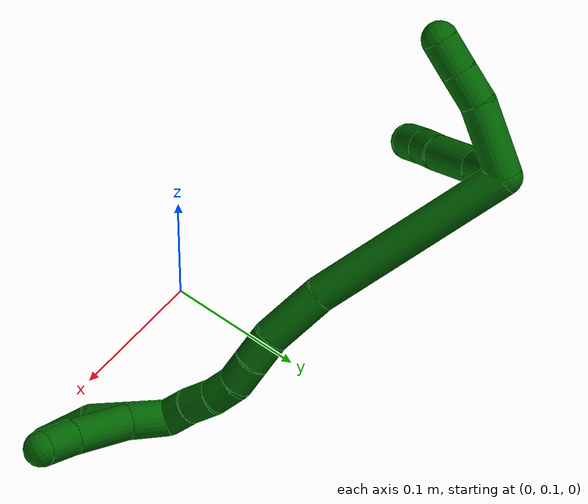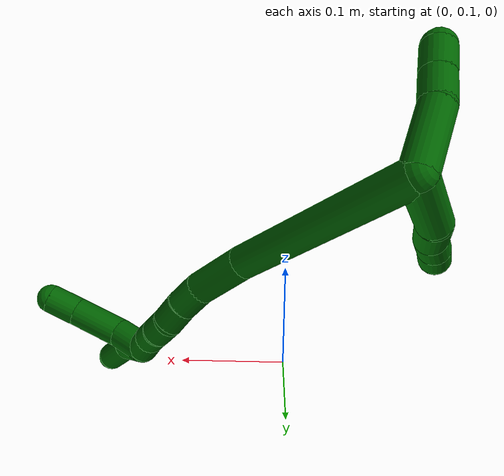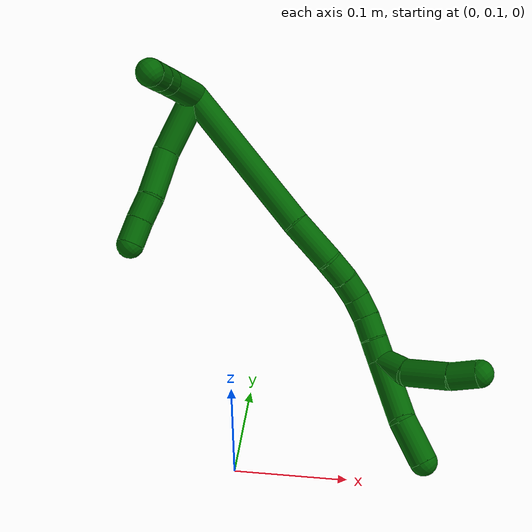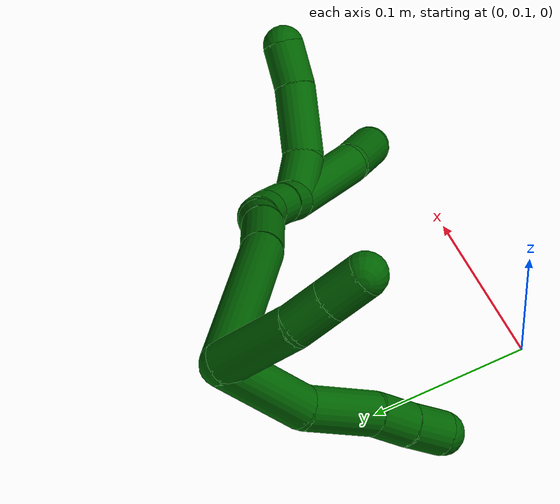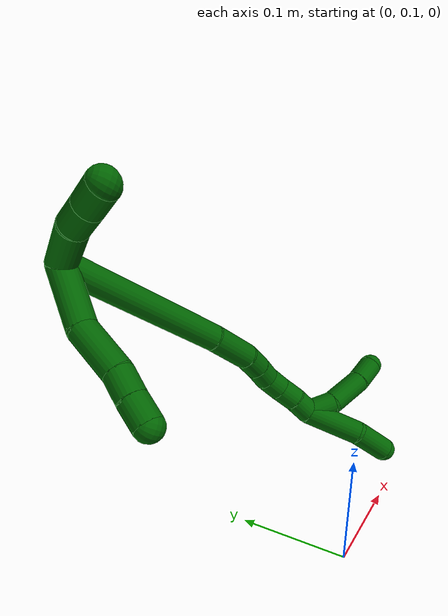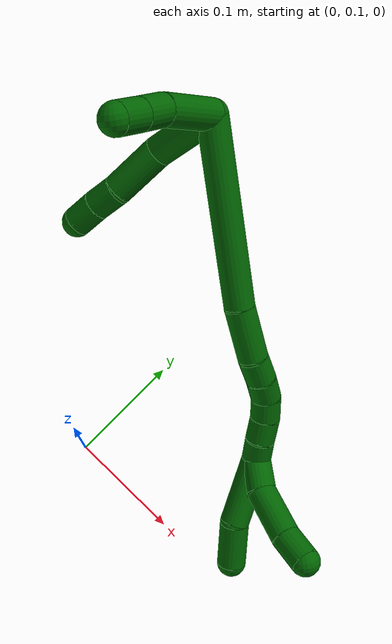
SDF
<sdf version="1.7">
 <world name="default">
  <model name="6">
   <static>0</static>
   <link name="6">
    <collision name="collision-cylinder-e_1_2_8">
     <pose>-0.025165 -0.00774 -0.011774 2.56003 -1.06036 -2.19748</pose>
     <geometry><cylinder><radius>0.0125</radius><length>0.057682</length></cylinder></geometry>
     <surface>
      <friction><ode><mu>1.16</mu><mu2>1.16</mu2><slip1>0</slip1><slip2>0</slip2></ode></friction>
      <contact><ode><kp>1e+06</kp><kd>1</kd><max_vel>0</max_vel><min_depth>0.001</min_depth></ode></contact>
     </surface>
    </collision>
    <visual name="visual-cylinder-e_1_2_8">
     <pose>-0.025165 -0.00774 -0.011774 2.56003 -1.06036 -2.19748</pose>
     <geometry><cylinder><radius>0.0125</radius><length>0.057682</length></cylinder></geometry>
     <material><ambient>0 0.392157 0.003922 1</ambient></material>
    </visual>
    <collision name="collision-cylinder-e_2_8_9">
     <pose>-0.065483 -0.026711 -0.036161 2.41412 -0.731344 -1.5766</pose>
     <geometry><cylinder><radius>0.0125</radius><length>0.045381</length></cylinder></geometry>
     <surface>
      <friction><ode><mu>1.16</mu><mu2>1.16</mu2><slip1>0</slip1><slip2>0</slip2></ode></friction>
      <contact><ode><kp>1e+06</kp><kd>1</kd><max_vel>0</max_vel><min_depth>0.001</min_depth></ode></contact>
     </surface>
    </collision>
    <visual name="visual-cylinder-e_2_8_9">
     <pose>-0.065483 -0.026711 -0.036161 2.41412 -0.731344 -1.5766</pose>
     <geometry><cylinder><radius>0.0125</radius><length>0.045381</length></cylinder></geometry>
     <material><ambient>0 0.392157 0.003922 1</ambient></material>
    </visual>
    <collision name="collision-cylinder-e_3_9_10">
     <pose>-0.089941 -0.04259 -0.054133 2.42697 -0.919313 -1.84924</pose>
     <geometry><cylinder><radius>0.0125</radius><length>0.023398</length></cylinder></geometry>
     <surface>
      <friction><ode><mu>1.16</mu><mu2>1.16</mu2><slip1>0</slip1><slip2>0</slip2></ode></friction>
      <contact><ode><kp>1e+06</kp><kd>1</kd><max_vel>0</max_vel><min_depth>0.001</min_depth></ode></contact>
     </surface>
    </collision>
    <visual name="visual-cylinder-e_3_9_10">
     <pose>-0.089941 -0.04259 -0.054133 2.42697 -0.919313 -1.84924</pose>
     <geometry><cylinder><radius>0.0125</radius><length>0.023398</length></cylinder></geometry>
     <material><ambient>0 0.392157 0.003922 1</ambient></material>
    </visual>
    <collision name="collision-cylinder-e_4_10_6">
     <pose>-0.108158 -0.051996 -0.065527 2.47416 -0.859322 -1.84617</pose>
     <geometry><cylinder><radius>0.0125</radius><length>0.023539</length></cylinder></geometry>
     <surface>
      <friction><ode><mu>1.16</mu><mu2>1.16</mu2><slip1>0</slip1><slip2>0</slip2></ode></friction>
      <contact><ode><kp>1e+06</kp><kd>1</kd><max_vel>0</max_vel><min_depth>0.001</min_depth></ode></contact>
     </surface>
    </collision>
    <visual name="visual-cylinder-e_4_10_6">
     <pose>-0.108158 -0.051996 -0.065527 2.47416 -0.859322 -1.84617</pose>
     <geometry><cylinder><radius>0.0125</radius><length>0.023539</length></cylinder></geometry>
     <material><ambient>0 0.392157 0.003922 1</ambient></material>
    </visual>
    <collision name="collision-cylinder-e_1_2_11">
     <pose>0.002688 -0.024749 0.006154 1.32708 0.105014 0.082128</pose>
     <geometry><cylinder><radius>0.0125</radius><length>0.051289</length></cylinder></geometry>
     <surface>
      <friction><ode><mu>1.16</mu><mu2>1.16</mu2><slip1>0</slip1><slip2>0</slip2></ode></friction>
      <contact><ode><kp>1e+06</kp><kd>1</kd><max_vel>0</max_vel><min_depth>0.001</min_depth></ode></contact>
     </surface>
    </collision>
    <visual name="visual-cylinder-e_1_2_11">
     <pose>0.002688 -0.024749 0.006154 1.32708 0.105014 0.082128</pose>
     <geometry><cylinder><radius>0.0125</radius><length>0.051289</length></cylinder></geometry>
     <material><ambient>0 0.392157 0.003922 1</ambient></material>
    </visual>
    <collision name="collision-cylinder-e_2_11_12">
     <pose>0.007468 -0.06159 0.012811 1.5293 0.171135 0.16421</pose>
     <geometry><cylinder><radius>0.0125</radius><length>0.024562</length></cylinder></geometry>
     <surface>
      <friction><ode><mu>1.16</mu><mu2>1.16</mu2><slip1>0</slip1><slip2>0</slip2></ode></friction>
      <contact><ode><kp>1e+06</kp><kd>1</kd><max_vel>0</max_vel><min_depth>0.001</min_depth></ode></contact>
     </surface>
    </collision>
    <visual name="visual-cylinder-e_2_11_12">
     <pose>0.007468 -0.06159 0.012811 1.5293 0.171135 0.16421</pose>
     <geometry><cylinder><radius>0.0125</radius><length>0.024562</length></cylinder></geometry>
     <material><ambient>0 0.392157 0.003922 1</ambient></material>
    </visual>
    <collision name="collision-cylinder-e_3_12_5">
     <pose>0.011648 -0.085555 0.013975 1.51508 0.173869 0.164485</pose>
     <geometry><cylinder><radius>0.0125</radius><length>0.024149</length></cylinder></geometry>
     <surface>
      <friction><ode><mu>1.16</mu><mu2>1.16</mu2><slip1>0</slip1><slip2>0</slip2></ode></friction>
      <contact><ode><kp>1e+06</kp><kd>1</kd><max_vel>0</max_vel><min_depth>0.001</min_depth></ode></contact>
     </surface>
    </collision>
    <visual name="visual-cylinder-e_3_12_5">
     <pose>0.011648 -0.085555 0.013975 1.51508 0.173869 0.164485</pose>
     <geometry><cylinder><radius>0.0125</radius><length>0.024149</length></cylinder></geometry>
     <material><ambient>0 0.392157 0.003922 1</ambient></material>
    </visual>
    <collision name="collision-cylinder-e_1_2_13">
     <pose>-0.00177 0.000803 -0.074628 -3.13083 -0.02371 2.28956</pose>
     <geometry><cylinder><radius>0.0125</radius><length>0.149306</length></cylinder></geometry>
     <surface>
      <friction><ode><mu>1.16</mu><mu2>1.16</mu2><slip1>0</slip1><slip2>0</slip2></ode></friction>
      <contact><ode><kp>1e+06</kp><kd>1</kd><max_vel>0</max_vel><min_depth>0.001</min_depth></ode></contact>
     </surface>
    </collision>
    <visual name="visual-cylinder-e_1_2_13">
     <pose>-0.00177 0.000803 -0.074628 -3.13083 -0.02371 2.28956</pose>
     <geometry><cylinder><radius>0.0125</radius><length>0.149306</length></cylinder></geometry>
     <material><ambient>0 0.392157 0.003922 1</ambient></material>
    </visual>
    <collision name="collision-cylinder-e_2_13_14">
     <pose>-0.003907 0.004983 -0.171457 -2.99063 -0.01633 0.215104</pose>
     <geometry><cylinder><radius>0.0125</radius><length>0.044919</length></cylinder></geometry>
     <surface>
      <friction><ode><mu>1.16</mu><mu2>1.16</mu2><slip1>0</slip1><slip2>0</slip2></ode></friction>
      <contact><ode><kp>1e+06</kp><kd>1</kd><max_vel>0</max_vel><min_depth>0.001</min_depth></ode></contact>
     </surface>
    </collision>
    <visual name="visual-cylinder-e_2_13_14">
     <pose>-0.003907 0.004983 -0.171457 -2.99063 -0.01633 0.215104</pose>
     <geometry><cylinder><radius>0.0125</radius><length>0.044919</length></cylinder></geometry>
     <material><ambient>0 0.392157 0.003922 1</ambient></material>
    </visual>
    <collision name="collision-cylinder-e_3_14_15">
     <pose>-0.005441 0.012009 -0.204215 -2.80888 -0.104156 0.602004</pose>
     <geometry><cylinder><radius>0.0125</radius><length>0.02246</length></cylinder></geometry>
     <surface>
      <friction><ode><mu>1.16</mu><mu2>1.16</mu2><slip1>0</slip1><slip2>0</slip2></ode></friction>
      <contact><ode><kp>1e+06</kp><kd>1</kd><max_vel>0</max_vel><min_depth>0.001</min_depth></ode></contact>
     </surface>
    </collision>
    <visual name="visual-cylinder-e_3_14_15">
     <pose>-0.005441 0.012009 -0.204215 -2.80888 -0.104156 0.602004</pose>
     <geometry><cylinder><radius>0.0125</radius><length>0.02246</length></cylinder></geometry>
     <material><ambient>0 0.392157 0.003922 1</ambient></material>
    </visual>
    <collision name="collision-cylinder-e_4_15_16">
     <pose>-0.008717 0.018852 -0.224229 -2.81576 -0.208166 1.13226</pose>
     <geometry><cylinder><radius>0.0125</radius><length>0.020406</length></cylinder></geometry>
     <surface>
      <friction><ode><mu>1.16</mu><mu2>1.16</mu2><slip1>0</slip1><slip2>0</slip2></ode></friction>
      <contact><ode><kp>1e+06</kp><kd>1</kd><max_vel>0</max_vel><min_depth>0.001</min_depth></ode></contact>
     </surface>
    </collision>
    <visual name="visual-cylinder-e_4_15_16">
     <pose>-0.008717 0.018852 -0.224229 -2.81576 -0.208166 1.13226</pose>
     <geometry><cylinder><radius>0.0125</radius><length>0.020406</length></cylinder></geometry>
     <material><ambient>0 0.392157 0.003922 1</ambient></material>
    </visual>
    <collision name="collision-cylinder-e_5_16_17">
     <pose>-0.013305 0.022191 -0.243433 -3.12686 -0.24906 3.02407</pose>
     <geometry><cylinder><radius>0.0125</radius><length>0.020117</length></cylinder></geometry>
     <surface>
      <friction><ode><mu>1.16</mu><mu2>1.16</mu2><slip1>0</slip1><slip2>0</slip2></ode></friction>
      <contact><ode><kp>1e+06</kp><kd>1</kd><max_vel>0</max_vel><min_depth>0.001</min_depth></ode></contact>
     </surface>
    </collision>
    <visual name="visual-cylinder-e_5_16_17">
     <pose>-0.013305 0.022191 -0.243433 -3.12686 -0.24906 3.02407</pose>
     <geometry><cylinder><radius>0.0125</radius><length>0.020117</length></cylinder></geometry>
     <material><ambient>0 0.392157 0.003922 1</ambient></material>
    </visual>
    <collision name="collision-cylinder-e_6_17_18">
     <pose>-0.019034 0.020617 -0.263162 2.97113 -0.310456 -2.1421</pose>
     <geometry><cylinder><radius>0.0125</radius><length>0.021273</length></cylinder></geometry>
     <surface>
      <friction><ode><mu>1.16</mu><mu2>1.16</mu2><slip1>0</slip1><slip2>0</slip2></ode></friction>
      <contact><ode><kp>1e+06</kp><kd>1</kd><max_vel>0</max_vel><min_depth>0.001</min_depth></ode></contact>
     </surface>
    </collision>
    <visual name="visual-cylinder-e_6_17_18">
     <pose>-0.019034 0.020617 -0.263162 2.97113 -0.310456 -2.1421</pose>
     <geometry><cylinder><radius>0.0125</radius><length>0.021273</length></cylinder></geometry>
     <material><ambient>0 0.392157 0.003922 1</ambient></material>
    </visual>
    <collision name="collision-cylinder-e_7_18_1">
     <pose>-0.026142 0.018427 -0.283175 3.09462 -0.366872 -2.88971</pose>
     <geometry><cylinder><radius>0.0125</radius><length>0.021518</length></cylinder></geometry>
     <surface>
      <friction><ode><mu>1.16</mu><mu2>1.16</mu2><slip1>0</slip1><slip2>0</slip2></ode></friction>
      <contact><ode><kp>1e+06</kp><kd>1</kd><max_vel>0</max_vel><min_depth>0.001</min_depth></ode></contact>
     </surface>
    </collision>
    <visual name="visual-cylinder-e_7_18_1">
     <pose>-0.026142 0.018427 -0.283175 3.09462 -0.366872 -2.88971</pose>
     <geometry><cylinder><radius>0.0125</radius><length>0.021518</length></cylinder></geometry>
     <material><ambient>0 0.392157 0.003922 1</ambient></material>
    </visual>
    <collision name="collision-cylinder-e_1_1_19">
     <pose>-0.022612 0.01188 -0.304049 2.63078 0.53647 1.6221</pose>
     <geometry><cylinder><radius>0.0125</radius><length>0.028918</length></cylinder></geometry>
     <surface>
      <friction><ode><mu>1.16</mu><mu2>1.16</mu2><slip1>0</slip1><slip2>0</slip2></ode></friction>
      <contact><ode><kp>1e+06</kp><kd>1</kd><max_vel>0</max_vel><min_depth>0.001</min_depth></ode></contact>
     </surface>
    </collision>
    <visual name="visual-cylinder-e_1_1_19">
     <pose>-0.022612 0.01188 -0.304049 2.63078 0.53647 1.6221</pose>
     <geometry><cylinder><radius>0.0125</radius><length>0.028918</length></cylinder></geometry>
     <material><ambient>0 0.392157 0.003922 1</ambient></material>
    </visual>
    <collision name="collision-cylinder-e_2_19_20">
     <pose>0.001177 0.000804 -0.328778 2.79606 0.837899 2.39463</pose>
     <geometry><cylinder><radius>0.0125</radius><length>0.044127</length></cylinder></geometry>
     <surface>
      <friction><ode><mu>1.16</mu><mu2>1.16</mu2><slip1>0</slip1><slip2>0</slip2></ode></friction>
      <contact><ode><kp>1e+06</kp><kd>1</kd><max_vel>0</max_vel><min_depth>0.001</min_depth></ode></contact>
     </surface>
    </collision>
    <visual name="visual-cylinder-e_2_19_20">
     <pose>0.001177 0.000804 -0.328778 2.79606 0.837899 2.39463</pose>
     <geometry><cylinder><radius>0.0125</radius><length>0.044127</length></cylinder></geometry>
     <material><ambient>0 0.392157 0.003922 1</ambient></material>
    </visual>
    <collision name="collision-cylinder-e_3_20_4">
     <pose>0.028996 -0.005998 -0.349592 2.88685 1.01107 2.68686</pose>
     <geometry><cylinder><radius>0.0125</radius><length>0.026955</length></cylinder></geometry>
     <surface>
      <friction><ode><mu>1.16</mu><mu2>1.16</mu2><slip1>0</slip1><slip2>0</slip2></ode></friction>
      <contact><ode><kp>1e+06</kp><kd>1</kd><max_vel>0</max_vel><min_depth>0.001</min_depth></ode></contact>
     </surface>
    </collision>
    <visual name="visual-cylinder-e_3_20_4">
     <pose>0.028996 -0.005998 -0.349592 2.88685 1.01107 2.68686</pose>
     <geometry><cylinder><radius>0.0125</radius><length>0.026955</length></cylinder></geometry>
     <material><ambient>0 0.392157 0.003922 1</ambient></material>
    </visual>
    <collision name="collision-cylinder-e_1_1_21">
     <pose>-0.035917 0.005521 -0.319264 2.69635 -0.202096 -0.842223</pose>
     <geometry><cylinder><radius>0.0125</radius><length>0.058944</length></cylinder></geometry>
     <surface>
      <friction><ode><mu>1.16</mu><mu2>1.16</mu2><slip1>0</slip1><slip2>0</slip2></ode></friction>
      <contact><ode><kp>1e+06</kp><kd>1</kd><max_vel>0</max_vel><min_depth>0.001</min_depth></ode></contact>
     </surface>
    </collision>
    <visual name="visual-cylinder-e_1_1_21">
     <pose>-0.035917 0.005521 -0.319264 2.69635 -0.202096 -0.842223</pose>
     <geometry><cylinder><radius>0.0125</radius><length>0.058944</length></cylinder></geometry>
     <material><ambient>0 0.392157 0.003922 1</ambient></material>
    </visual>
    <collision name="collision-cylinder-e_2_21_3">
     <pose>-0.046043 -0.008822 -0.365323 3.04645 -0.206544 -2.2804</pose>
     <geometry><cylinder><radius>0.0125</radius><length>0.041056</length></cylinder></geometry>
     <surface>
      <friction><ode><mu>1.16</mu><mu2>1.16</mu2><slip1>0</slip1><slip2>0</slip2></ode></friction>
      <contact><ode><kp>1e+06</kp><kd>1</kd><max_vel>0</max_vel><min_depth>0.001</min_depth></ode></contact>
     </surface>
    </collision>
    <visual name="visual-cylinder-e_2_21_3">
     <pose>-0.046043 -0.008822 -0.365323 3.04645 -0.206544 -2.2804</pose>
     <geometry><cylinder><radius>0.0125</radius><length>0.041056</length></cylinder></geometry>
     <material><ambient>0 0.392157 0.003922 1</ambient></material>
    </visual>
    <collision name="collision-sphere-3">
     <pose>-0.050253 -0.010731 -0.385324 0 -0 0</pose>
     <geometry><sphere><radius>0.0125</radius></sphere></geometry>
     <surface>
      <friction><ode><mu>1.16</mu><mu2>1.16</mu2><slip1>0</slip1><slip2>0</slip2></ode></friction>
      <contact><ode><kp>1e+06</kp><kd>1</kd><max_vel>0</max_vel><min_depth>0.001</min_depth></ode></contact>
     </surface>
    </collision>
    <visual name="visual-sphere-3">
     <pose>-0.050253 -0.010731 -0.385324 0 -0 0</pose>
     <geometry><sphere><radius>0.0125</radius></sphere></geometry>
     <material><ambient>0 0.392157 0.003922 1</ambient></material>
    </visual>
    <collision name="collision-sphere-21">
     <pose>-0.041833 -0.006913 -0.345322 0 -0 0</pose>
     <geometry><sphere><radius>0.0125</radius></sphere></geometry>
     <surface>
      <friction><ode><mu>1.16</mu><mu2>1.16</mu2><slip1>0</slip1><slip2>0</slip2></ode></friction>
      <contact><ode><kp>1e+06</kp><kd>1</kd><max_vel>0</max_vel><min_depth>0.001</min_depth></ode></contact>
     </surface>
    </collision>
    <visual name="visual-sphere-21">
     <pose>-0.041833 -0.006913 -0.345322 0 -0 0</pose>
     <geometry><sphere><radius>0.0125</radius></sphere></geometry>
     <material><ambient>0 0.392157 0.003922 1</ambient></material>
    </visual>
    <collision name="collision-sphere-4">
     <pose>0.040417 -0.007802 -0.356517 0 -0 0</pose>
     <geometry><sphere><radius>0.0125</radius></sphere></geometry>
     <surface>
      <friction><ode><mu>1.16</mu><mu2>1.16</mu2><slip1>0</slip1><slip2>0</slip2></ode></friction>
      <contact><ode><kp>1e+06</kp><kd>1</kd><max_vel>0</max_vel><min_depth>0.001</min_depth></ode></contact>
     </surface>
    </collision>
    <visual name="visual-sphere-4">
     <pose>0.040417 -0.007802 -0.356517 0 -0 0</pose>
     <geometry><sphere><radius>0.0125</radius></sphere></geometry>
     <material><ambient>0 0.392157 0.003922 1</ambient></material>
    </visual>
    <collision name="collision-sphere-20">
     <pose>0.017575 -0.004195 -0.342667 0 -0 0</pose>
     <geometry><sphere><radius>0.0125</radius></sphere></geometry>
     <surface>
      <friction><ode><mu>1.16</mu><mu2>1.16</mu2><slip1>0</slip1><slip2>0</slip2></ode></friction>
      <contact><ode><kp>1e+06</kp><kd>1</kd><max_vel>0</max_vel><min_depth>0.001</min_depth></ode></contact>
     </surface>
    </collision>
    <visual name="visual-sphere-20">
     <pose>0.017575 -0.004195 -0.342667 0 -0 0</pose>
     <geometry><sphere><radius>0.0125</radius></sphere></geometry>
     <material><ambient>0 0.392157 0.003922 1</ambient></material>
    </visual>
    <collision name="collision-sphere-11">
     <pose>0.005376 -0.049499 0.012309 0 -0 0</pose>
     <geometry><sphere><radius>0.0125</radius></sphere></geometry>
     <surface>
      <friction><ode><mu>1.16</mu><mu2>1.16</mu2><slip1>0</slip1><slip2>0</slip2></ode></friction>
      <contact><ode><kp>1e+06</kp><kd>1</kd><max_vel>0</max_vel><min_depth>0.001</min_depth></ode></contact>
     </surface>
    </collision>
    <visual name="visual-sphere-11">
     <pose>0.005376 -0.049499 0.012309 0 -0 0</pose>
     <geometry><sphere><radius>0.0125</radius></sphere></geometry>
     <material><ambient>0 0.392157 0.003922 1</ambient></material>
    </visual>
    <collision name="collision-sphere-6">
     <pose>-0.117072 -0.056753 -0.071562 0 -0 0</pose>
     <geometry><sphere><radius>0.0125</radius></sphere></geometry>
     <surface>
      <friction><ode><mu>1.16</mu><mu2>1.16</mu2><slip1>0</slip1><slip2>0</slip2></ode></friction>
      <contact><ode><kp>1e+06</kp><kd>1</kd><max_vel>0</max_vel><min_depth>0.001</min_depth></ode></contact>
     </surface>
    </collision>
    <visual name="visual-sphere-6">
     <pose>-0.117072 -0.056753 -0.071562 0 -0 0</pose>
     <geometry><sphere><radius>0.0125</radius></sphere></geometry>
     <material><ambient>0 0.392157 0.003922 1</ambient></material>
    </visual>
    <collision name="collision-sphere-10">
     <pose>-0.099244 -0.047239 -0.059491 0 -0 0</pose>
     <geometry><sphere><radius>0.0125</radius></sphere></geometry>
     <surface>
      <friction><ode><mu>1.16</mu><mu2>1.16</mu2><slip1>0</slip1><slip2>0</slip2></ode></friction>
      <contact><ode><kp>1e+06</kp><kd>1</kd><max_vel>0</max_vel><min_depth>0.001</min_depth></ode></contact>
     </surface>
    </collision>
    <visual name="visual-sphere-10">
     <pose>-0.099244 -0.047239 -0.059491 0 -0 0</pose>
     <geometry><sphere><radius>0.0125</radius></sphere></geometry>
     <material><ambient>0 0.392157 0.003922 1</ambient></material>
    </visual>
    <collision name="collision-sphere-9">
     <pose>-0.080638 -0.037941 -0.048774 0 -0 0</pose>
     <geometry><sphere><radius>0.0125</radius></sphere></geometry>
     <surface>
      <friction><ode><mu>1.16</mu><mu2>1.16</mu2><slip1>0</slip1><slip2>0</slip2></ode></friction>
      <contact><ode><kp>1e+06</kp><kd>1</kd><max_vel>0</max_vel><min_depth>0.001</min_depth></ode></contact>
     </surface>
    </collision>
    <visual name="visual-sphere-9">
     <pose>-0.080638 -0.037941 -0.048774 0 -0 0</pose>
     <geometry><sphere><radius>0.0125</radius></sphere></geometry>
     <material><ambient>0 0.392157 0.003922 1</ambient></material>
    </visual>
    <collision name="collision-sphere-2">
     <geometry><sphere><radius>0.0125</radius></sphere></geometry>
     <surface>
      <friction><ode><mu>1.16</mu><mu2>1.16</mu2><slip1>0</slip1><slip2>0</slip2></ode></friction>
      <contact><ode><kp>1e+06</kp><kd>1</kd><max_vel>0</max_vel><min_depth>0.001</min_depth></ode></contact>
     </surface>
    </collision>
    <visual name="visual-sphere-2">
     <geometry><sphere><radius>0.0125</radius></sphere></geometry>
     <material><ambient>0 0.392157 0.003922 1</ambient></material>
    </visual>
    <collision name="collision-sphere-19">
     <pose>-0.015222 0.005804 -0.31489 0 -0 0</pose>
     <geometry><sphere><radius>0.0125</radius></sphere></geometry>
     <surface>
      <friction><ode><mu>1.16</mu><mu2>1.16</mu2><slip1>0</slip1><slip2>0</slip2></ode></friction>
      <contact><ode><kp>1e+06</kp><kd>1</kd><max_vel>0</max_vel><min_depth>0.001</min_depth></ode></contact>
     </surface>
    </collision>
    <visual name="visual-sphere-19">
     <pose>-0.015222 0.005804 -0.31489 0 -0 0</pose>
     <geometry><sphere><radius>0.0125</radius></sphere></geometry>
     <material><ambient>0 0.392157 0.003922 1</ambient></material>
    </visual>
    <collision name="collision-sphere-8">
     <pose>-0.050329 -0.015481 -0.023548 0 -0 0</pose>
     <geometry><sphere><radius>0.0125</radius></sphere></geometry>
     <surface>
      <friction><ode><mu>1.16</mu><mu2>1.16</mu2><slip1>0</slip1><slip2>0</slip2></ode></friction>
      <contact><ode><kp>1e+06</kp><kd>1</kd><max_vel>0</max_vel><min_depth>0.001</min_depth></ode></contact>
     </surface>
    </collision>
    <visual name="visual-sphere-8">
     <pose>-0.050329 -0.015481 -0.023548 0 -0 0</pose>
     <geometry><sphere><radius>0.0125</radius></sphere></geometry>
     <material><ambient>0 0.392157 0.003922 1</ambient></material>
    </visual>
    <collision name="collision-sphere-12">
     <pose>0.009559 -0.073681 0.013313 0 -0 0</pose>
     <geometry><sphere><radius>0.0125</radius></sphere></geometry>
     <surface>
      <friction><ode><mu>1.16</mu><mu2>1.16</mu2><slip1>0</slip1><slip2>0</slip2></ode></friction>
      <contact><ode><kp>1e+06</kp><kd>1</kd><max_vel>0</max_vel><min_depth>0.001</min_depth></ode></contact>
     </surface>
    </collision>
    <visual name="visual-sphere-12">
     <pose>0.009559 -0.073681 0.013313 0 -0 0</pose>
     <geometry><sphere><radius>0.0125</radius></sphere></geometry>
     <material><ambient>0 0.392157 0.003922 1</ambient></material>
    </visual>
    <collision name="collision-sphere-5">
     <pose>0.013737 -0.097429 0.014637 0 -0 0</pose>
     <geometry><sphere><radius>0.0125</radius></sphere></geometry>
     <surface>
      <friction><ode><mu>1.16</mu><mu2>1.16</mu2><slip1>0</slip1><slip2>0</slip2></ode></friction>
      <contact><ode><kp>1e+06</kp><kd>1</kd><max_vel>0</max_vel><min_depth>0.001</min_depth></ode></contact>
     </surface>
    </collision>
    <visual name="visual-sphere-5">
     <pose>0.013737 -0.097429 0.014637 0 -0 0</pose>
     <geometry><sphere><radius>0.0125</radius></sphere></geometry>
     <material><ambient>0 0.392157 0.003922 1</ambient></material>
    </visual>
    <collision name="collision-sphere-13">
     <pose>-0.00354 0.001606 -0.149255 0 -0 0</pose>
     <geometry><sphere><radius>0.0125</radius></sphere></geometry>
     <surface>
      <friction><ode><mu>1.16</mu><mu2>1.16</mu2><slip1>0</slip1><slip2>0</slip2></ode></friction>
      <contact><ode><kp>1e+06</kp><kd>1</kd><max_vel>0</max_vel><min_depth>0.001</min_depth></ode></contact>
     </surface>
    </collision>
    <visual name="visual-sphere-13">
     <pose>-0.00354 0.001606 -0.149255 0 -0 0</pose>
     <geometry><sphere><radius>0.0125</radius></sphere></geometry>
     <material><ambient>0 0.392157 0.003922 1</ambient></material>
    </visual>
    <collision name="collision-sphere-14">
     <pose>-0.004273 0.008361 -0.193658 0 -0 0</pose>
     <geometry><sphere><radius>0.0125</radius></sphere></geometry>
     <surface>
      <friction><ode><mu>1.16</mu><mu2>1.16</mu2><slip1>0</slip1><slip2>0</slip2></ode></friction>
      <contact><ode><kp>1e+06</kp><kd>1</kd><max_vel>0</max_vel><min_depth>0.001</min_depth></ode></contact>
     </surface>
    </collision>
    <visual name="visual-sphere-14">
     <pose>-0.004273 0.008361 -0.193658 0 -0 0</pose>
     <geometry><sphere><radius>0.0125</radius></sphere></geometry>
     <material><ambient>0 0.392157 0.003922 1</ambient></material>
    </visual>
    <collision name="collision-sphere-15">
     <pose>-0.006608 0.015657 -0.214771 0 -0 0</pose>
     <geometry><sphere><radius>0.0125</radius></sphere></geometry>
     <surface>
      <friction><ode><mu>1.16</mu><mu2>1.16</mu2><slip1>0</slip1><slip2>0</slip2></ode></friction>
      <contact><ode><kp>1e+06</kp><kd>1</kd><max_vel>0</max_vel><min_depth>0.001</min_depth></ode></contact>
     </surface>
    </collision>
    <visual name="visual-sphere-15">
     <pose>-0.006608 0.015657 -0.214771 0 -0 0</pose>
     <geometry><sphere><radius>0.0125</radius></sphere></geometry>
     <material><ambient>0 0.392157 0.003922 1</ambient></material>
    </visual>
    <collision name="collision-sphere-16">
     <pose>-0.010826 0.022048 -0.233686 0 -0 0</pose>
     <geometry><sphere><radius>0.0125</radius></sphere></geometry>
     <surface>
      <friction><ode><mu>1.16</mu><mu2>1.16</mu2><slip1>0</slip1><slip2>0</slip2></ode></friction>
      <contact><ode><kp>1e+06</kp><kd>1</kd><max_vel>0</max_vel><min_depth>0.001</min_depth></ode></contact>
     </surface>
    </collision>
    <visual name="visual-sphere-16">
     <pose>-0.010826 0.022048 -0.233686 0 -0 0</pose>
     <geometry><sphere><radius>0.0125</radius></sphere></geometry>
     <material><ambient>0 0.392157 0.003922 1</ambient></material>
    </visual>
    <collision name="collision-sphere-17">
     <pose>-0.015784 0.022335 -0.25318 0 -0 0</pose>
     <geometry><sphere><radius>0.0125</radius></sphere></geometry>
     <surface>
      <friction><ode><mu>1.16</mu><mu2>1.16</mu2><slip1>0</slip1><slip2>0</slip2></ode></friction>
      <contact><ode><kp>1e+06</kp><kd>1</kd><max_vel>0</max_vel><min_depth>0.001</min_depth></ode></contact>
     </surface>
    </collision>
    <visual name="visual-sphere-17">
     <pose>-0.015784 0.022335 -0.25318 0 -0 0</pose>
     <geometry><sphere><radius>0.0125</radius></sphere></geometry>
     <material><ambient>0 0.392157 0.003922 1</ambient></material>
    </visual>
    <collision name="collision-sphere-18">
     <pose>-0.022283 0.018899 -0.273143 0 -0 0</pose>
     <geometry><sphere><radius>0.0125</radius></sphere></geometry>
     <surface>
      <friction><ode><mu>1.16</mu><mu2>1.16</mu2><slip1>0</slip1><slip2>0</slip2></ode></friction>
      <contact><ode><kp>1e+06</kp><kd>1</kd><max_vel>0</max_vel><min_depth>0.001</min_depth></ode></contact>
     </surface>
    </collision>
    <visual name="visual-sphere-18">
     <pose>-0.022283 0.018899 -0.273143 0 -0 0</pose>
     <geometry><sphere><radius>0.0125</radius></sphere></geometry>
     <material><ambient>0 0.392157 0.003922 1</ambient></material>
    </visual>
    <collision name="collision-sphere-1">
     <pose>-0.030002 0.017955 -0.293207 0 -0 0</pose>
     <geometry><sphere><radius>0.0125</radius></sphere></geometry>
     <surface>
      <friction><ode><mu>1.16</mu><mu2>1.16</mu2><slip1>0</slip1><slip2>0</slip2></ode></friction>
      <contact><ode><kp>1e+06</kp><kd>1</kd><max_vel>0</max_vel><min_depth>0.001</min_depth></ode></contact>
     </surface>
    </collision>
    <visual name="visual-sphere-1">
     <pose>-0.030002 0.017955 -0.293207 0 -0 0</pose>
     <geometry><sphere><radius>0.0125</radius></sphere></geometry>
     <material><ambient>0 0.392157 0.003922 1</ambient></material>
    </visual>
    <inertial>
     <pose>-0.019032 -0.008356 -0.153731 0 -0 0</pose>
     <mass>0.75</mass>
     <inertia><ixx>1.7e-05</ixx><ixy>0</ixy><ixz>0</ixz><iyy>0.000386</iyy><iyz>0</iyz><izz>2.3e-05</izz></inertia>
    </inertial>
   </link>
   <pose>-0.063761 0.325769 0.246577 -0.746775 -0.761511 0.316123</pose>
  </model>
 </world>
</sdf>
